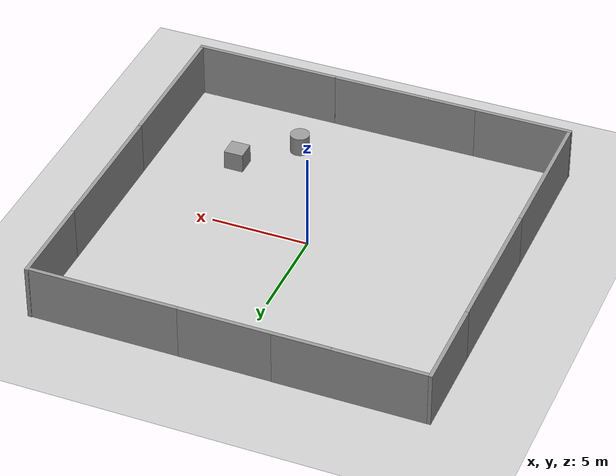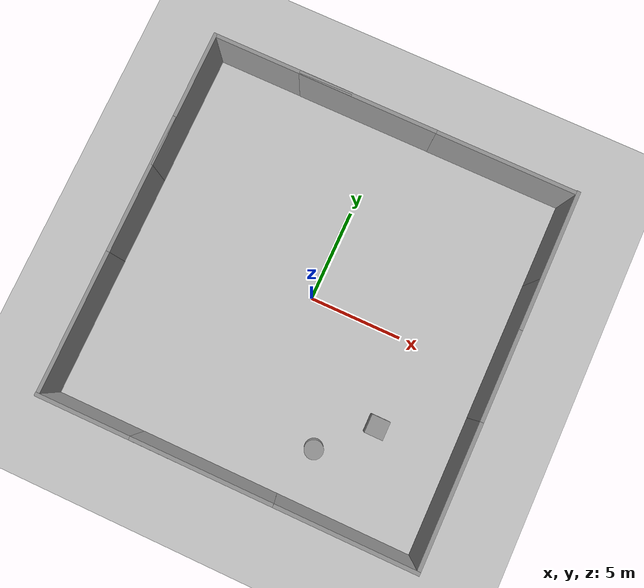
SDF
<sdf version="1.6">
 <world name="default">
  <light name="sun" type="directional">
   <pose>0 0 10 0 -0 0</pose>
   <diffuse>0.8 0.8 0.8 1</diffuse>
   <specular>0.2 0.2 0.2 1</specular>
   <attenuation>
    <range>1000</range>
    <constant>0.9</constant>
    <linear>0.01</linear>
    <quadratic>0.001</quadratic>
   </attenuation>
   <direction>-0.5 0.1 -0.9</direction>
  </light>
  <model name="ground_plane">
   <static>1</static>
   <link name="link">
    <collision name="collision">
     <geometry><plane><normal>0 0 1</normal><size>100 100</size></plane></geometry>
     <surface><friction><ode><mu>100</mu><mu2>50</mu2></ode></friction></surface>
    </collision>
    <visual name="visual">
     <cast_shadows>0</cast_shadows>
     <geometry><plane><normal>0 0 1</normal><size>100 100</size></plane></geometry>
     <material>
      <script><uri>file://media/materials/scripts/gazebo.material</uri><name>Gazebo/Grey</name></script>
     </material>
    </visual>
   </link>
  </model>
  <gravity>0 0 -9.8</gravity>
  <magnetic_field>6e-06 2.3e-05 -4.2e-05</magnetic_field>
  <atmosphere type="adiabatic"/>
  <physics name="default_physics" default="0" type="ode">
   <max_step_size>0.001</max_step_size>
   <real_time_factor>1</real_time_factor>
   <real_time_update_rate>0</real_time_update_rate>
  </physics>
  <scene><ambient>0.4 0.4 0.4 1</ambient><background>0.7 0.7 0.7 1</background><shadows>1</shadows></scene>
  <spherical_coordinates>
   <surface_model>EARTH_WGS84</surface_model>
   <latitude_deg>0</latitude_deg>
   <longitude_deg>0</longitude_deg>
   <elevation>0</elevation>
   <heading_deg>0</heading_deg>
  </spherical_coordinates>
  <model name="grey_wall">
   <static>1</static>
   <link name="link">
    <pose>0 0 1.4 0 -0 0</pose>
    <collision name="collision"><geometry><box><size>7.5 0.2 2.8</size></box></geometry></collision>
    <visual name="visual">
     <cast_shadows>0</cast_shadows>
     <geometry><box><size>7.5 0.2 2.8</size></box></geometry>
     <material>
      <script>
       <uri>model://grey_wall/materials/scripts</uri>
       <uri>model://grey_wall/materials/textures</uri>
       <name>vrc/grey_wall</name>
      </script>
     </material>
    </visual>
   </link>
   <pose>-6.25606 -9.89102 0 0 -0 0</pose>
  </model>
  <model name="grey_wall_clone">
   <static>1</static>
   <link name="link">
    <pose>0 0 1.4 0 -0 0</pose>
    <collision name="collision"><geometry><box><size>7.5 0.2 2.8</size></box></geometry></collision>
    <visual name="visual">
     <cast_shadows>0</cast_shadows>
     <geometry><box><size>7.5 0.2 2.8</size></box></geometry>
     <material>
      <script>
       <uri>model://grey_wall/materials/scripts</uri>
       <uri>model://grey_wall/materials/textures</uri>
       <name>vrc/grey_wall</name>
      </script>
     </material>
    </visual>
   </link>
   <pose>6.24846 -9.88968 0 0 -0 0</pose>
  </model>
  <model name="grey_wall_clone_0">
   <static>1</static>
   <link name="link">
    <pose>0 0 1.4 0 -0 0</pose>
    <collision name="collision"><geometry><box><size>7.5 0.2 2.8</size></box></geometry></collision>
    <visual name="visual">
     <cast_shadows>0</cast_shadows>
     <geometry><box><size>7.5 0.2 2.8</size></box></geometry>
     <material>
      <script>
       <uri>model://grey_wall/materials/scripts</uri>
       <uri>model://grey_wall/materials/textures</uri>
       <name>vrc/grey_wall</name>
      </script>
     </material>
    </visual>
   </link>
   <pose>-1.2535 -9.8886 0 0 -0 0</pose>
  </model>
  <model name="grey_wall_clone_1">
   <static>1</static>
   <link name="link">
    <pose>0 0 1.4 0 -0 0</pose>
    <collision name="collision"><geometry><box><size>7.5 0.2 2.8</size></box></geometry></collision>
    <visual name="visual">
     <cast_shadows>0</cast_shadows>
     <geometry><box><size>7.5 0.2 2.8</size></box></geometry>
     <material>
      <script>
       <uri>model://grey_wall/materials/scripts</uri>
       <uri>model://grey_wall/materials/textures</uri>
       <name>vrc/grey_wall</name>
      </script>
     </material>
    </visual>
   </link>
   <pose>-9.8979 -6.04727 0 0 0 -1.57064</pose>
  </model>
  <model name="grey_wall_clone_1_clone">
   <static>1</static>
   <link name="link">
    <pose>0 0 1.4 0 -0 0</pose>
    <collision name="collision"><geometry><box><size>7.5 0.2 2.8</size></box></geometry></collision>
    <visual name="visual">
     <cast_shadows>0</cast_shadows>
     <geometry><box><size>7.5 0.2 2.8</size></box></geometry>
     <material>
      <script>
       <uri>model://grey_wall/materials/scripts</uri>
       <uri>model://grey_wall/materials/textures</uri>
       <name>vrc/grey_wall</name>
      </script>
     </material>
    </visual>
   </link>
   <pose>-9.8994 1.4509 0 0 0 -1.57064</pose>
  </model>
  <model name="grey_wall_clone_1_clone_0">
   <static>1</static>
   <link name="link">
    <pose>0 0 1.4 0 -0 0</pose>
    <collision name="collision"><geometry><box><size>7.5 0.2 2.8</size></box></geometry></collision>
    <visual name="visual">
     <cast_shadows>0</cast_shadows>
     <geometry><box><size>7.5 0.2 2.8</size></box></geometry>
     <material>
      <script>
       <uri>model://grey_wall/materials/scripts</uri>
       <uri>model://grey_wall/materials/textures</uri>
       <name>vrc/grey_wall</name>
      </script>
     </material>
    </visual>
   </link>
   <pose>-9.89865 6.24782 0 0 0 -1.57064</pose>
  </model>
  <model name="grey_wall_clone_1_clone_1">
   <static>1</static>
   <link name="link">
    <pose>0 0 1.4 0 -0 0</pose>
    <collision name="collision"><geometry><box><size>7.5 0.2 2.8</size></box></geometry></collision>
    <visual name="visual">
     <cast_shadows>0</cast_shadows>
     <geometry><box><size>7.5 0.2 2.8</size></box></geometry>
     <material>
      <script>
       <uri>model://grey_wall/materials/scripts</uri>
       <uri>model://grey_wall/materials/textures</uri>
       <name>vrc/grey_wall</name>
      </script>
     </material>
    </visual>
   </link>
   <pose>9.89723 -6.0529 0 0 0 -1.57064</pose>
  </model>
  <model name="grey_wall_clone_1_clone_2">
   <static>1</static>
   <link name="link">
    <pose>0 0 1.4 0 -0 0</pose>
    <collision name="collision"><geometry><box><size>7.5 0.2 2.8</size></box></geometry></collision>
    <visual name="visual">
     <cast_shadows>0</cast_shadows>
     <geometry><box><size>7.5 0.2 2.8</size></box></geometry>
     <material>
      <script>
       <uri>model://grey_wall/materials/scripts</uri>
       <uri>model://grey_wall/materials/textures</uri>
       <name>vrc/grey_wall</name>
      </script>
     </material>
    </visual>
   </link>
   <pose>9.89244 1.43932 0 0 0 -1.57064</pose>
  </model>
  <model name="grey_wall_clone_1_clone_3">
   <static>1</static>
   <link name="link">
    <pose>0 0 1.4 0 -0 0</pose>
    <collision name="collision"><geometry><box><size>7.5 0.2 2.8</size></box></geometry></collision>
    <visual name="visual">
     <cast_shadows>0</cast_shadows>
     <geometry><box><size>7.5 0.2 2.8</size></box></geometry>
     <material>
      <script>
       <uri>model://grey_wall/materials/scripts</uri>
       <uri>model://grey_wall/materials/textures</uri>
       <name>vrc/grey_wall</name>
      </script>
     </material>
    </visual>
   </link>
   <pose>9.89263 6.26044 0 0 0 -1.57064</pose>
  </model>
  <model name="grey_wall_clone_clone">
   <static>1</static>
   <link name="link">
    <pose>0 0 1.4 0 -0 0</pose>
    <collision name="collision"><geometry><box><size>7.5 0.2 2.8</size></box></geometry></collision>
    <visual name="visual">
     <cast_shadows>0</cast_shadows>
     <geometry><box><size>7.5 0.2 2.8</size></box></geometry>
     <material>
      <script>
       <uri>model://grey_wall/materials/scripts</uri>
       <uri>model://grey_wall/materials/textures</uri>
       <name>vrc/grey_wall</name>
      </script>
     </material>
    </visual>
   </link>
   <pose>6.04827 9.88211 0 0 -0 0</pose>
  </model>
  <model name="grey_wall_clone_clone_0">
   <static>1</static>
   <link name="link">
    <pose>0 0 1.4 0 -0 0</pose>
    <collision name="collision"><geometry><box><size>7.5 0.2 2.8</size></box></geometry></collision>
    <visual name="visual">
     <cast_shadows>0</cast_shadows>
     <geometry><box><size>7.5 0.2 2.8</size></box></geometry>
     <material>
      <script>
       <uri>model://grey_wall/materials/scripts</uri>
       <uri>model://grey_wall/materials/textures</uri>
       <name>vrc/grey_wall</name>
      </script>
     </material>
    </visual>
   </link>
   <pose>-1.44131 9.88821 0 0 -0 0</pose>
  </model>
  <model name="grey_wall_clone_clone_1">
   <static>1</static>
   <link name="link">
    <pose>0 0 1.4 0 -0 0</pose>
    <collision name="collision"><geometry><box><size>7.5 0.2 2.8</size></box></geometry></collision>
    <visual name="visual">
     <cast_shadows>0</cast_shadows>
     <geometry><box><size>7.5 0.2 2.8</size></box></geometry>
     <material>
      <script>
       <uri>model://grey_wall/materials/scripts</uri>
       <uri>model://grey_wall/materials/textures</uri>
       <name>vrc/grey_wall</name>
      </script>
     </material>
    </visual>
   </link>
   <pose>-6.06557 9.89915 0 0 -0 0</pose>
  </model>
  <model name="unit_box">
   <static>1</static>
   <pose>5.69799 -4.62957 0.499995 -1e-05 -0 0</pose>
   <link name="link">
    <inertial>
     <mass>1</mass>
     <inertia>
      <ixx>0.166667</ixx>
      <ixy>0</ixy>
      <ixz>0</ixz>
      <iyy>0.166667</iyy>
      <iyz>0</iyz>
      <izz>0.166667</izz>
     </inertia>
    </inertial>
    <collision name="collision"><geometry><box><size>1 1 1</size></box></geometry></collision>
    <visual name="visual">
     <geometry><box><size>1 1 1</size></box></geometry>
     <material>
      <script><name>Gazebo/Grey</name><uri>file://media/materials/scripts/gazebo.material</uri></script>
     </material>
    </visual>
   </link>
  </model>
  <model name="unit_cylinder">
   <static>1</static>
   <pose>3.25741 -6.94871 0.499997 3e-06 4e-06 -0</pose>
   <link name="link">
    <inertial>
     <mass>1</mass>
     <inertia><ixx>0.145833</ixx><ixy>0</ixy><ixz>0</ixz><iyy>0.145833</iyy><iyz>0</iyz><izz>0.125</izz></inertia>
    </inertial>
    <collision name="collision">
     <geometry><cylinder><radius>0.5</radius><length>1</length></cylinder></geometry>
    </collision>
    <visual name="visual">
     <geometry><cylinder><radius>0.5</radius><length>1</length></cylinder></geometry>
     <material>
      <script><name>Gazebo/Grey</name><uri>file://media/materials/scripts/gazebo.material</uri></script>
     </material>
    </visual>
   </link>
  </model>
 </world>
</sdf>
